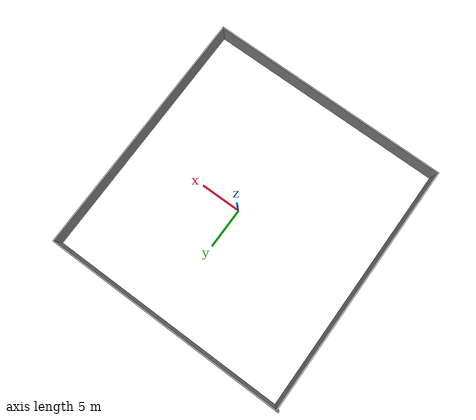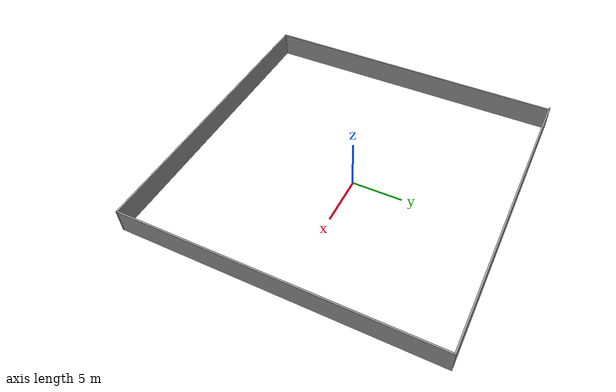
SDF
<?xml version='1.0'?>
<sdf version='1.7'>
  <model name='main_boundry'>
    <pose>-0.998532 -0.707453 0 0 -0 0</pose>
    <link name='Wall_2'>
      <collision name='Wall_2_Collision'>
        <geometry>
          <box>
            <size>30 0.15 2.5</size>
          </box>
        </geometry>
        <pose>0 0 1.25 0 -0 0</pose>
      </collision>
      <visual name='Wall_2_Visual'>
        <pose>0 0 1.25 0 -0 0</pose>
        <geometry>
          <box>
            <size>30 0.15 2.5</size>
          </box>
        </geometry>
        <material>
          <script>
            <uri>file://media/materials/scripts/gazebo.material</uri>
            <name>Gazebo/Grey</name>
          </script>
          <ambient>1 1 1 1</ambient>
        </material>
        <meta>
          <layer>0</layer>
        </meta>
      </visual>
      <pose>-1e-06 15.425 0 0 -0 0</pose>
    </link>
    <link name='Wall_3'>
      <collision name='Wall_3_Collision'>
        <geometry>
          <box>
            <size>31 0.15 2.5</size>
          </box>
        </geometry>
        <pose>0 0 1.25 0 -0 0</pose>
      </collision>
      <visual name='Wall_3_Visual'>
        <pose>0 0 1.25 0 -0 0</pose>
        <geometry>
          <box>
            <size>31 0.15 2.5</size>
          </box>
        </geometry>
        <material>
          <script>
            <uri>file://media/materials/scripts/gazebo.material</uri>
            <name>Gazebo/Grey</name>
          </script>
          <ambient>1 1 1 1</ambient>
        </material>
        <meta>
          <layer>0</layer>
        </meta>
      </visual>
      <pose>14.925 -0 0 0 -0 -1.5708</pose>
    </link>
    <link name='Wall_4'>
      <collision name='Wall_4_Collision'>
        <geometry>
          <box>
            <size>29.75 0.15 2.5</size>
          </box>
        </geometry>
        <pose>0 0 1.25 0 -0 0</pose>
      </collision>
      <visual name='Wall_4_Visual'>
        <pose>0 0 1.25 0 -0 0</pose>
        <geometry>
          <box>
            <size>29.75 0.15 2.5</size>
          </box>
        </geometry>
        <material>
          <script>
            <uri>file://media/materials/scripts/gazebo.material</uri>
            <name>Gazebo/Grey</name>
          </script>
          <ambient>1 1 1 1</ambient>
        </material>
        <meta>
          <layer>0</layer>
        </meta>
      </visual>
      <pose>0.124999 -15.425 0 0 -0 3.14159</pose>
    </link>
    <link name='Wall_5'>
      <collision name='Wall_5_Collision'>
        <geometry>
          <box>
            <size>31 0.15 2.5</size>
          </box>
        </geometry>
        <pose>0 0 1.25 0 -0 0</pose>
      </collision>
      <visual name='Wall_5_Visual'>
        <pose>0 0 1.25 0 -0 0</pose>
        <geometry>
          <box>
            <size>31 0.15 2.5</size>
          </box>
        </geometry>
        <material>
          <script>
            <uri>file://media/materials/scripts/gazebo.material</uri>
            <name>Gazebo/Grey</name>
          </script>
          <ambient>1 1 1 1</ambient>
        </material>
        <meta>
          <layer>0</layer>
        </meta>
      </visual>
      <pose>-14.675 -0 0 0 -0 1.5708</pose>
    </link>
    <static>1</static>
  </model>
</sdf>
